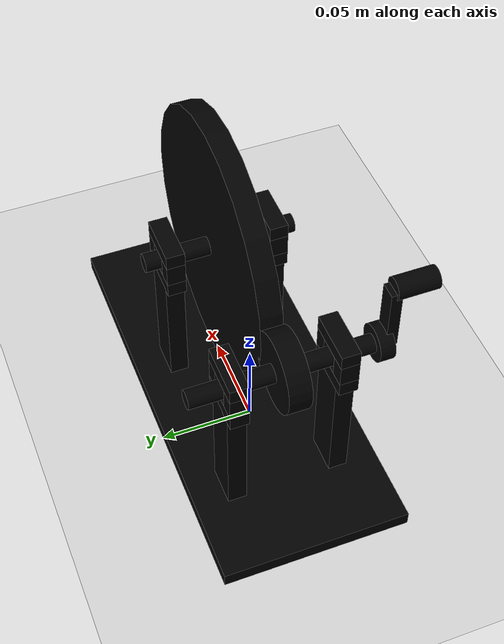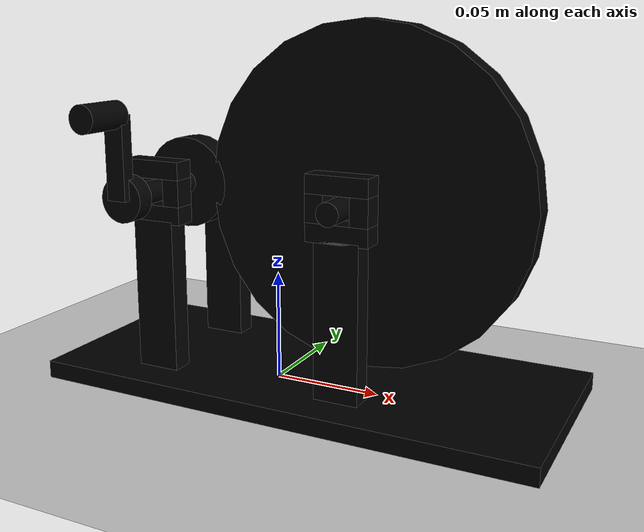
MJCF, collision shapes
<mujoco model="open_frame_single_stage_4to1">
  <compiler angle="radian" meshdir="meshes" />
  <option timestep="0.002" gravity="0 0 -9.81" integrator="implicitfast" />
  <size njmax="1000" nconmax="200" />
  <default>
    <joint damping="0.02" armature="0.0001" />
    <geom friction="0.7 0.01 0.001" condim="3" solref="0.004 1" />
  </default>
  <asset>
    <mesh name="base_mesh" file="base.stl" scale="0.001 0.001 0.001" />
    <mesh name="input_front_bearing_mesh" file="input_front_bearing.stl" scale="0.001 0.001 0.001" />
    <mesh name="input_rear_bearing_mesh" file="input_rear_bearing.stl" scale="0.001 0.001 0.001" />
    <mesh name="output_front_bearing_mesh" file="output_front_bearing.stl" scale="0.001 0.001 0.001" />
    <mesh name="output_rear_bearing_mesh" file="output_rear_bearing.stl" scale="0.001 0.001 0.001" />
    <mesh name="input_shaft_mesh" file="input_shaft.stl" scale="0.001 0.001 0.001" />
    <mesh name="output_shaft_mesh" file="output_shaft.stl" scale="0.001 0.001 0.001" />
    <mesh name="input_pinion_mesh" file="input_pinion.stl" scale="0.001 0.001 0.001" />
    <mesh name="output_gear_mesh" file="output_gear.stl" scale="0.001 0.001 0.001" />
    <mesh name="hand_crank_mesh" file="hand_crank.stl" scale="0.001 0.001 0.001" />
  </asset>
  <worldbody>
    <geom name="ground" type="plane" size="0.5 0.5 0.01" rgba="0.85 0.85 0.85 1" />
    <body name="base" pos="0.02 0 0.004">
      <geom name="base_geom" type="mesh" mesh="base_mesh" rgba="0.20 0.25 0.30 1" contype="0" conaffinity="0" />
      <geom name="base_collision" type="box" size="0.115 0.05 0.004" rgba="0 0 0 0" />
      <body name="input_front_bearing" pos="-0.065 -0.028 0.086">
        <geom name="input_front_bearing_geom" type="mesh" mesh="input_front_bearing_mesh" rgba="0.55 0.58 0.62 1" contype="0" conaffinity="0" />
        <geom name="ifb_column_collision" type="box" pos="0 0 -0.0475" size="0.010 0.005 0.0345" rgba="0 0 0 0" />
        <geom name="ifb_ring_top_collision" type="box" pos="0 0 0.010" size="0.014 0.005 0.004" rgba="0 0 0 0" />
        <geom name="ifb_ring_bottom_collision" type="box" pos="0 0 -0.010" size="0.014 0.005 0.004" rgba="0 0 0 0" />
        <geom name="ifb_ring_left_collision" type="box" pos="-0.010 0 0" size="0.004 0.005 0.006" rgba="0 0 0 0" />
        <geom name="ifb_ring_right_collision" type="box" pos="0.010 0 0" size="0.004 0.005 0.006" rgba="0 0 0 0" />
      </body>
      <body name="input_rear_bearing" pos="-0.065 0.028 0.086">
        <geom name="input_rear_bearing_geom" type="mesh" mesh="input_rear_bearing_mesh" rgba="0.55 0.58 0.62 1" contype="0" conaffinity="0" />
        <geom name="irb_column_collision" type="box" pos="0 0 -0.0475" size="0.010 0.005 0.0345" rgba="0 0 0 0" />
        <geom name="irb_ring_top_collision" type="box" pos="0 0 0.010" size="0.014 0.005 0.004" rgba="0 0 0 0" />
        <geom name="irb_ring_bottom_collision" type="box" pos="0 0 -0.010" size="0.014 0.005 0.004" rgba="0 0 0 0" />
        <geom name="irb_ring_left_collision" type="box" pos="-0.010 0 0" size="0.004 0.005 0.006" rgba="0 0 0 0" />
        <geom name="irb_ring_right_collision" type="box" pos="0.010 0 0" size="0.004 0.005 0.006" rgba="0 0 0 0" />
      </body>
      <body name="output_front_bearing" pos="0.025 -0.028 0.086">
        <geom name="output_front_bearing_geom" type="mesh" mesh="output_front_bearing_mesh" rgba="0.55 0.58 0.62 1" contype="0" conaffinity="0" />
        <geom name="ofb_column_collision" type="box" pos="0 0 -0.0475" size="0.010 0.005 0.0345" rgba="0 0 0 0" />
        <geom name="ofb_ring_top_collision" type="box" pos="0 0 0.010" size="0.014 0.005 0.004" rgba="0 0 0 0" />
        <geom name="ofb_ring_bottom_collision" type="box" pos="0 0 -0.010" size="0.014 0.005 0.004" rgba="0 0 0 0" />
        <geom name="ofb_ring_left_collision" type="box" pos="-0.010 0 0" size="0.004 0.005 0.006" rgba="0 0 0 0" />
        <geom name="ofb_ring_right_collision" type="box" pos="0.010 0 0" size="0.004 0.005 0.006" rgba="0 0 0 0" />
      </body>
      <body name="output_rear_bearing" pos="0.025 0.028 0.086">
        <geom name="output_rear_bearing_geom" type="mesh" mesh="output_rear_bearing_mesh" rgba="0.55 0.58 0.62 1" contype="0" conaffinity="0" />
        <geom name="orb_column_collision" type="box" pos="0 0 -0.0475" size="0.010 0.005 0.0345" rgba="0 0 0 0" />
        <geom name="orb_ring_top_collision" type="box" pos="0 0 0.010" size="0.014 0.005 0.004" rgba="0 0 0 0" />
        <geom name="orb_ring_bottom_collision" type="box" pos="0 0 -0.010" size="0.014 0.005 0.004" rgba="0 0 0 0" />
        <geom name="orb_ring_left_collision" type="box" pos="-0.010 0 0" size="0.004 0.005 0.006" rgba="0 0 0 0" />
        <geom name="orb_ring_right_collision" type="box" pos="0.010 0 0" size="0.004 0.005 0.006" rgba="0 0 0 0" />
      </body>
      <body name="input_shaft" pos="-0.065 0 0.086">
        <joint name="input_shaft_hinge" type="hinge" axis="0 1 0" limited="false" />
        <geom name="input_shaft_geom" type="mesh" mesh="input_shaft_mesh" rgba="0.65 0.65 0.68 1" contype="0" conaffinity="0" />
        <geom name="input_shaft_collision" type="cylinder" size="0.005 0.050" quat="0.70710678 0.70710678 0 0" rgba="0 0 0 0" />
        <body name="input_pinion">
          <geom name="input_pinion_geom" type="mesh" mesh="input_pinion_mesh" rgba="0.95 0.55 0.12 1" contype="0" conaffinity="0" />
          <geom name="input_pinion_collision" type="cylinder" size="0.021 0.006" quat="0.70710678 0.70710678 0 0" rgba="0 0 0 0" />
        </body>
        <body name="hand_crank">
          <geom name="hand_crank_geom" type="mesh" mesh="hand_crank_mesh" rgba="0.18 0.42 0.78 1" contype="0" conaffinity="0" />
          <geom name="crank_hub_collision" type="cylinder" pos="0 -0.050 0" size="0.010 0.004" quat="0.70710678 0.70710678 0 0" rgba="0 0 0 0" />
          <geom name="crank_arm_collision" type="box" pos="0 -0.054 0.018" size="0.0045 0.003 0.018" rgba="0 0 0 0" />
          <geom name="crank_handle_collision" type="cylinder" pos="0 -0.065 0.036" size="0.006 0.011" quat="0.70710678 0.70710678 0 0" rgba="0 0 0 0" />
          <site name="hand_crank_tip" pos="0 -0.065 0.036" size="0.002" />
        </body>
      </body>
      <body name="output_shaft" pos="0.025 0 0.086">
        <joint name="output_shaft_hinge" type="hinge" axis="0 1 0" limited="false" />
        <geom name="output_shaft_geom" type="mesh" mesh="output_shaft_mesh" rgba="0.65 0.65 0.68 1" contype="0" conaffinity="0" />
        <geom name="output_shaft_collision" type="cylinder" size="0.005 0.041" quat="0.70710678 0.70710678 0 0" rgba="0 0 0 0" />
        <body name="output_gear">
          <geom name="output_gear_geom" type="mesh" mesh="output_gear_mesh" rgba="0.20 0.72 0.48 1" contype="0" conaffinity="0" />
          <geom name="output_gear_collision" type="cylinder" size="0.075 0.006" quat="0.70710678 0.70710678 0 0" rgba="0 0 0 0" />
        </body>
      </body>
    </body>
  </worldbody>
  <contact>

    <exclude name="ideal_spur_mesh_exclusion" body1="input_pinion" body2="output_gear" />
  </contact>
  <equality>

    <joint name="spur_mesh_12t_to_48t" joint1="output_shaft_hinge" joint2="input_shaft_hinge" polycoef="0 -0.25 0 0 0" solref="0.002 1" />
  </equality>
  <actuator>

    <velocity name="hand_crank_velocity" joint="input_shaft_hinge" kv="4" ctrlrange="-8 8" />
  </actuator>
</mujoco>
